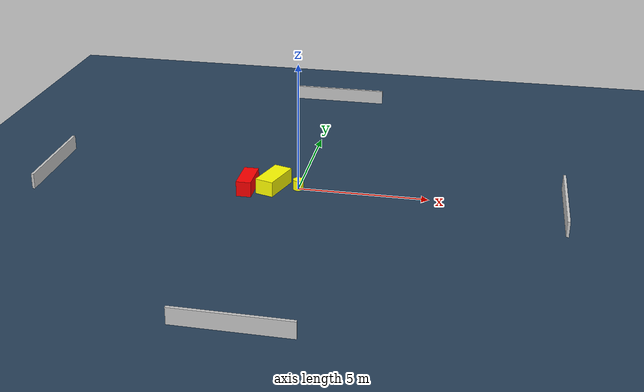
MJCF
<?xml version="1.0" ?>
<mujoco model="generated_environment">
  <option timestep="0.01" integrator="RK4" cone="elliptic"/>
  <default>
    <geom density="1"/>
  </default>
  <asset>
    <texture builtin="gradient" height="3072" name="skybox" rgb1="0.3 0.5 0.7" rgb2="0 0 0" type="skybox" width="512"/>
    <texture builtin="checker" height="300" name="groundplane" rgb1="0.2 0.3 0.4" rgb2="0.1 0.2 0.3" type="2d" width="300"/>
    <material name="groundplane" reflectance="0.2" texrepeat="5 5" texture="groundplane"/>
  </asset>
  <worldbody>
    <light dir="0 0 -1" directional="true" pos="0 0 1.5"/>
    <geom condim="3" friction="0.5 0.005 0.001" material="groundplane" name="floor" pos="0 0 0" size="0 0 0.05" type="plane"/>
    <body name="walls">
      <geom name="wall_1" condim="4" pos="-10.0 0.0 0.3" rgba="0.800000011920929 0.800000011920929 0.800000011920929 1.0" size="0.05 2.0 0.3" type="box"/>
      <geom name="wall_2" condim="4" pos="10.0 0.0 0.3" rgba="0.800000011920929 0.800000011920929 0.800000011920929 1.0" size="0.05 2.0 0.3" type="box"/>
      <geom name="wall_3" condim="4" pos="0.0 -10.0 0.3" rgba="0.800000011920929 0.800000011920929 0.800000011920929 1.0" size="2.0 0.05 0.3" type="box"/>
      <geom name="wall_4" condim="4" pos="0.0 10.0 0.3" rgba="0.800000011920929 0.800000011920929 0.800000011920929 1.0" size="2.0 0.05 0.3" type="box"/>
    </body>
    <body name="robot">
      <joint name="joint_x" type="slide" pos="0 0 0" axis="1 0 0"/>
      <joint name="joint_y" type="slide" pos="0 0 0" axis="0 1 0"/>
      <geom name="robot" type="cylinder" pos="0.0 0.0 0.2" size="0.2 0.2 0.0" mass="5.0" friction="1.0 0.005 0.0001" condim="4" rgba="1.0 1.0 0.0 1.0"/>
    </body>
    <body name="obstacle_1_movable">
      <geom name="obstacle_1_movable" condim="4" pos="-0.9422275546017213 -0.08353943540344592 0.3" euler="0 0 162.7000690135971" friction="0.0 0.005 0.001" rgba="1.0 1.0 0.0 1.0" size="0.36245228039424326 0.7605891045911712 0.3" type="box" mass="0.1"/>
      <joint type="free"/>
    </body>
    <body name="obstacle_2_static">
      <geom name="obstacle_2_static" condim="4" pos="-1.899356331271718 -0.4084382367361669 0.3" euler="0 0 270.2853765024108" friction="0.0 0.005 0.001" rgba="1.0 0.0 0.0 1.0" size="0.6817387266908271 0.28522774999050804 0.3" type="box"/>
    </body>
  </worldbody>
  <actuator>
    <motor name="actuator_x" joint="joint_x" gear="1" ctrlrange="-1 1"/>
    <motor name="actuator_y" joint="joint_y" gear="1" ctrlrange="-1 1"/>
  </actuator>
</mujoco>
